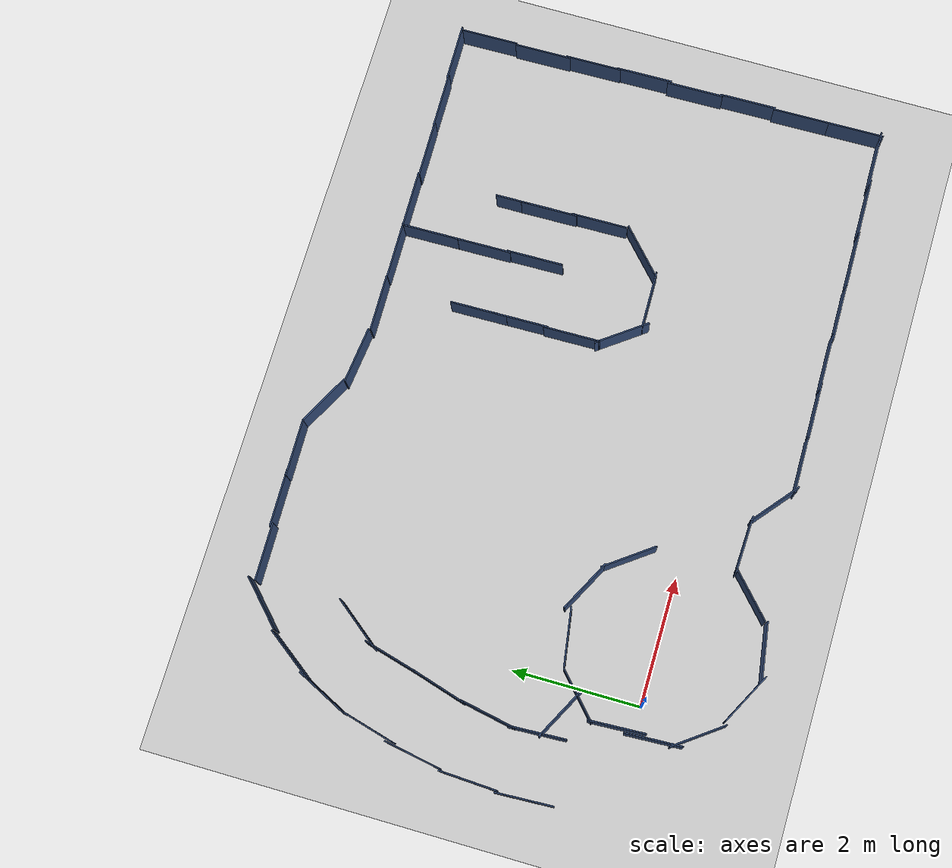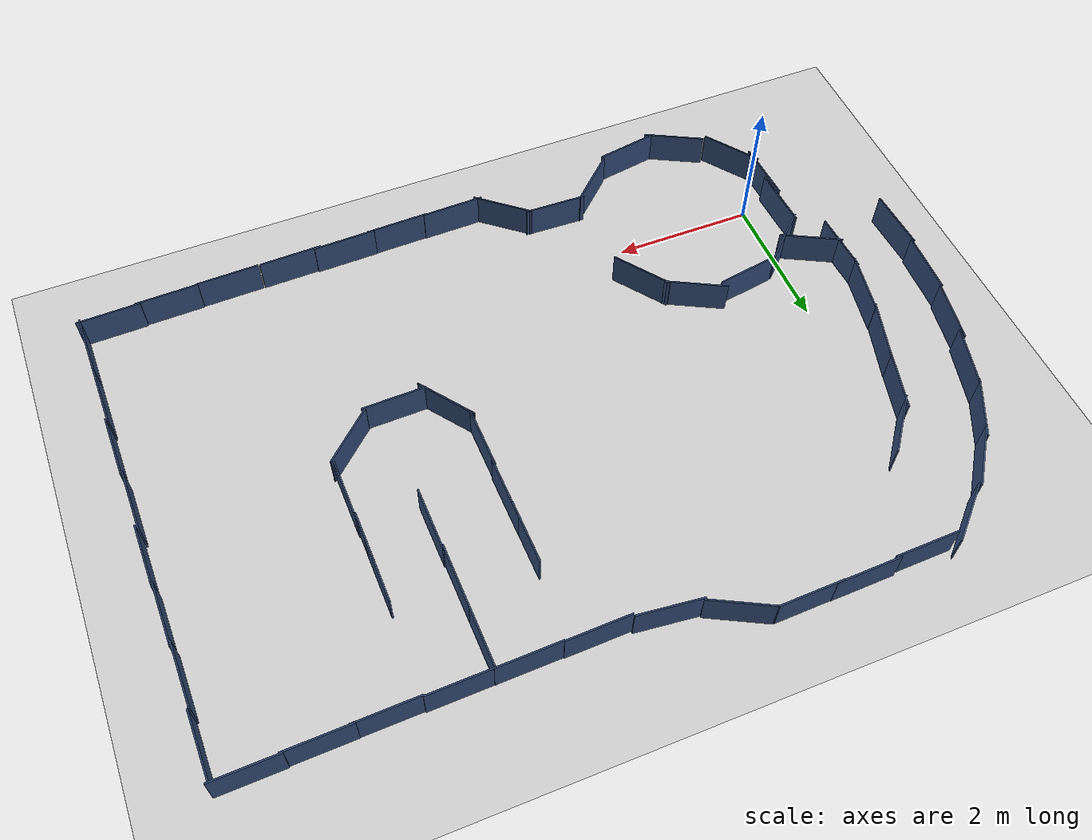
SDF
<sdf version="1.6">
 <world name="default">
  <light name="sun" type="directional">
   <pose>0 0 10 0 -0 0</pose>
   <diffuse>0.8 0.8 0.8 1</diffuse>
   <specular>0.2 0.2 0.2 1</specular>
   <attenuation>
    <range>1000</range>
    <constant>0.9</constant>
    <linear>0.01</linear>
    <quadratic>0.001</quadratic>
   </attenuation>
   <direction>-0.5 0.1 -0.9</direction>
  </light>
  <model name="ground_plane">
   <static>1</static>
   <link name="link">
    <collision name="collision">
     <geometry><plane><normal>0 0 1</normal><size>100 100</size></plane></geometry>
     <surface><friction><ode><mu>100</mu><mu2>50</mu2></ode></friction></surface>
    </collision>
    <visual name="visual">
     <cast_shadows>0</cast_shadows>
     <geometry><plane><normal>0 0 1</normal><size>100 100</size></plane></geometry>
     <material>
      <script><uri>file://media/materials/scripts/gazebo.material</uri><name>Gazebo/Grey</name></script>
     </material>
    </visual>
   </link>
  </model>
  <gravity>0 0 -9.8</gravity>
  <magnetic_field>6e-06 2.3e-05 -4.2e-05</magnetic_field>
  <atmosphere type="adiabatic"/>
  <physics name="default_physics" default="0" type="ode">
   <max_step_size>0.001</max_step_size>
   <real_time_factor>1</real_time_factor>
   <real_time_update_rate>1000</real_time_update_rate>
  </physics>
  <scene><ambient>0.4 0.4 0.4 1</ambient><background>0.7 0.7 0.7 1</background><shadows>1</shadows></scene>
  <spherical_coordinates>
   <surface_model>EARTH_WGS84</surface_model>
   <latitude_deg>0</latitude_deg>
   <longitude_deg>0</longitude_deg>
   <elevation>0</elevation>
   <heading_deg>0</heading_deg>
  </spherical_coordinates>
  <model name="wall01">
   <link name="link">
    <inertial>
     <mass>50</mass>
     <inertia><ixx>1</ixx><ixy>0</ixy><ixz>0</ixz><iyy>1</iyy><iyz>0</iyz><izz>1</izz></inertia>
    </inertial>
    <visual name="wall">
     <pose>0 0 0.45 0 -0 0</pose>
     <geometry><box><size>0.02 0.5 0.9</size></box></geometry>
     <material>
      <ambient>0.392 0.584 0.929 1</ambient>
      <diffuse>0.196 0.292 0.4645 1</diffuse>
      <specular>0 0 0 1</specular>
     </material>
    </visual>
    <collision name="collision_wall">
     <pose>0 0 0.45 0 -0 0</pose>
     <geometry><box><size>0.02 0.5 0.9</size></box></geometry>
    </collision>
    <velocity_decay><linear>0</linear><angular>0</angular></velocity_decay>
   </link>
   <static>1</static>
   <pose>-0.460276 -0.546699 0.249694 1.56697 0.002797 0.631382</pose>
  </model>
  <model name="wall01_clone">
   <link name="link">
    <inertial>
     <mass>50</mass>
     <inertia><ixx>1</ixx><ixy>0</ixy><ixz>0</ixz><iyy>1</iyy><iyz>0</iyz><izz>1</izz></inertia>
    </inertial>
    <visual name="wall">
     <pose>0 0 0.45 0 -0 0</pose>
     <geometry><box><size>0.02 0.5 0.9</size></box></geometry>
     <material>
      <ambient>0.392 0.584 0.929 1</ambient>
      <diffuse>0.196 0.292 0.4645 1</diffuse>
      <specular>0 0 0 1</specular>
     </material>
    </visual>
    <collision name="collision_wall">
     <pose>0 0 0.45 0 -0 0</pose>
     <geometry><box><size>0.02 0.5 0.9</size></box></geometry>
    </collision>
    <velocity_decay><linear>0</linear><angular>0</angular></velocity_decay>
   </link>
   <static>1</static>
   <pose>0.112634 -1.23525 0.250212 1.56861 0.004203 1.09041</pose>
  </model>
  <model name="wall01_clone_0">
   <link name="link">
    <inertial>
     <mass>50</mass>
     <inertia><ixx>1</ixx><ixy>0</ixy><ixz>0</ixz><iyy>1</iyy><iyz>0</iyz><izz>1</izz></inertia>
    </inertial>
    <visual name="wall">
     <pose>0 0 0.45 0 -0 0</pose>
     <geometry><box><size>0.02 0.5 0.9</size></box></geometry>
     <material>
      <ambient>0.392 0.584 0.929 1</ambient>
      <diffuse>0.196 0.292 0.4645 1</diffuse>
      <specular>0 0 0 1</specular>
     </material>
    </visual>
    <collision name="collision_wall">
     <pose>0 0 0.45 0 -0 0</pose>
     <geometry><box><size>0.02 0.5 0.9</size></box></geometry>
    </collision>
    <velocity_decay><linear>0</linear><angular>0</angular></velocity_decay>
   </link>
   <static>1</static>
   <pose>0.816188 -1.60558 0.249996 1.57154 0.004681 1.72852</pose>
  </model>
  <model name="wall01_clone_1">
   <link name="link">
    <inertial>
     <mass>50</mass>
     <inertia><ixx>1</ixx><ixy>0</ixy><ixz>0</ixz><iyy>1</iyy><iyz>0</iyz><izz>1</izz></inertia>
    </inertial>
    <visual name="wall">
     <pose>0 0 0.45 0 -0 0</pose>
     <geometry><box><size>0.02 0.5 0.9</size></box></geometry>
     <material>
      <ambient>0.392 0.584 0.929 1</ambient>
      <diffuse>0.196 0.292 0.4645 1</diffuse>
      <specular>0 0 0 1</specular>
     </material>
    </visual>
    <collision name="collision_wall">
     <pose>0 0 0.45 0 -0 0</pose>
     <geometry><box><size>0.02 0.5 0.9</size></box></geometry>
    </collision>
    <velocity_decay><linear>0</linear><angular>0</angular></velocity_decay>
   </link>
   <static>1</static>
   <pose>1.68389 -1.43313 0.247902 1.57403 0.003469 2.32039</pose>
  </model>
  <model name="wall01_clone_1_clone">
   <link name="link">
    <inertial>
     <mass>50</mass>
     <inertia><ixx>1</ixx><ixy>0</ixy><ixz>0</ixz><iyy>1</iyy><iyz>0</iyz><izz>1</izz></inertia>
    </inertial>
    <visual name="wall">
     <pose>0 0 0.45 0 -0 0</pose>
     <geometry><box><size>0.02 0.5 0.9</size></box></geometry>
     <material>
      <ambient>0.392 0.584 0.929 1</ambient>
      <diffuse>0.196 0.292 0.4645 1</diffuse>
      <specular>0 0 0 1</specular>
     </material>
    </visual>
    <collision name="collision_wall">
     <pose>0 0 0.45 0 -0 0</pose>
     <geometry><box><size>0.02 0.5 0.9</size></box></geometry>
    </collision>
    <velocity_decay><linear>0</linear><angular>0</angular></velocity_decay>
   </link>
   <static>1</static>
   <pose>-0.4435 0.646746 0.248434 1.57403 0.003469 2.32039</pose>
  </model>
  <model name="wall01_clone_0_clone">
   <link name="link">
    <inertial>
     <mass>50</mass>
     <inertia><ixx>1</ixx><ixy>0</ixy><ixz>0</ixz><iyy>1</iyy><iyz>0</iyz><izz>1</izz></inertia>
    </inertial>
    <visual name="wall">
     <pose>0 0 0.45 0 -0 0</pose>
     <geometry><box><size>0.02 0.5 0.9</size></box></geometry>
     <material>
      <ambient>0.392 0.584 0.929 1</ambient>
      <diffuse>0.196 0.292 0.4645 1</diffuse>
      <specular>0 0 0 1</specular>
     </material>
    </visual>
    <collision name="collision_wall">
     <pose>0 0 0.45 0 -0 0</pose>
     <geometry><box><size>0.02 0.5 0.9</size></box></geometry>
    </collision>
    <velocity_decay><linear>0</linear><angular>0</angular></velocity_decay>
   </link>
   <static>1</static>
   <pose>0.234089 1.25872 0.250194 1.57154 0.004681 1.72852</pose>
  </model>
  <model name="wall01_clone_clone">
   <link name="link">
    <inertial>
     <mass>50</mass>
     <inertia><ixx>1</ixx><ixy>0</ixy><ixz>0</ixz><iyy>1</iyy><iyz>0</iyz><izz>1</izz></inertia>
    </inertial>
    <visual name="wall">
     <pose>0 0 0.45 0 -0 0</pose>
     <geometry><box><size>0.02 0.5 0.9</size></box></geometry>
     <material>
      <ambient>0.392 0.584 0.929 1</ambient>
      <diffuse>0.196 0.292 0.4645 1</diffuse>
      <specular>0 0 0 1</specular>
     </material>
    </visual>
    <collision name="collision_wall">
     <pose>0 0 0.45 0 -0 0</pose>
     <geometry><box><size>0.02 0.5 0.9</size></box></geometry>
    </collision>
    <velocity_decay><linear>0</linear><angular>0</angular></velocity_decay>
   </link>
   <static>1</static>
   <pose>1.06818 1.49731 0.249686 1.56861 0.004203 1.09041</pose>
  </model>
  <model name="wall01_clone_2">
   <link name="link">
    <inertial>
     <mass>50</mass>
     <inertia><ixx>1</ixx><ixy>0</ixy><ixz>0</ixz><iyy>1</iyy><iyz>0</iyz><izz>1</izz></inertia>
    </inertial>
    <visual name="wall">
     <pose>0 0 0.45 0 -0 0</pose>
     <geometry><box><size>0.02 0.5 0.9</size></box></geometry>
     <material>
      <ambient>0.392 0.584 0.929 1</ambient>
      <diffuse>0.196 0.292 0.4645 1</diffuse>
      <specular>0 0 0 1</specular>
     </material>
    </visual>
    <collision name="collision_wall">
     <pose>0 0 0.45 0 -0 0</pose>
     <geometry><box><size>0.02 0.5 0.9</size></box></geometry>
    </collision>
    <velocity_decay><linear>0</linear><angular>0</angular></velocity_decay>
   </link>
   <static>1</static>
   <pose>1.8031 1.13896 0.249124 1.56697 0.002797 0.631382</pose>
  </model>
  <model name="wall01_clone_0_clone_clone">
   <link name="link">
    <inertial>
     <mass>50</mass>
     <inertia><ixx>1</ixx><ixy>0</ixy><ixz>0</ixz><iyy>1</iyy><iyz>0</iyz><izz>1</izz></inertia>
    </inertial>
    <visual name="wall">
     <pose>0 0 0.45 0 -0 0</pose>
     <geometry><box><size>0.02 0.5 0.9</size></box></geometry>
     <material>
      <ambient>0.392 0.584 0.929 1</ambient>
      <diffuse>0.196 0.292 0.4645 1</diffuse>
      <specular>0 0 0 1</specular>
     </material>
    </visual>
    <collision name="collision_wall">
     <pose>0 0 0.45 0 -0 0</pose>
     <geometry><box><size>0.02 0.5 0.9</size></box></geometry>
    </collision>
    <velocity_decay><linear>0</linear><angular>0</angular></velocity_decay>
   </link>
   <static>1</static>
   <pose>2.27453 -0.828198 0.249905 1.57064 0.004737 1.5375</pose>
  </model>
  <model name="wall01_clone_0_clone_clone_0">
   <link name="link">
    <inertial>
     <mass>50</mass>
     <inertia><ixx>1</ixx><ixy>0</ixy><ixz>0</ixz><iyy>1</iyy><iyz>0</iyz><izz>1</izz></inertia>
    </inertial>
    <visual name="wall">
     <pose>0 0 0.45 0 -0 0</pose>
     <geometry><box><size>0.02 0.5 0.9</size></box></geometry>
     <material>
      <ambient>0.392 0.584 0.929 1</ambient>
      <diffuse>0.196 0.292 0.4645 1</diffuse>
      <specular>0 0 0 1</specular>
     </material>
    </visual>
    <collision name="collision_wall">
     <pose>0 0 0.45 0 -0 0</pose>
     <geometry><box><size>0.02 0.5 0.9</size></box></geometry>
    </collision>
    <velocity_decay><linear>0</linear><angular>0</angular></velocity_decay>
   </link>
   <static>1</static>
   <pose>3.09993 -0.8363 0.253138 1.56777 0.00365 0.879278</pose>
  </model>
  <model name="wall01_clone_0_clone_clone_0_clone">
   <link name="link">
    <inertial>
     <mass>50</mass>
     <inertia><ixx>1</ixx><ixy>0</ixy><ixz>0</ixz><iyy>1</iyy><iyz>0</iyz><izz>1</izz></inertia>
    </inertial>
    <visual name="wall">
     <pose>0 0 0.45 0 -0 0</pose>
     <geometry><box><size>0.02 0.5 0.9</size></box></geometry>
     <material>
      <ambient>0.392 0.584 0.929 1</ambient>
      <diffuse>0.196 0.292 0.4645 1</diffuse>
      <specular>0 0 0 1</specular>
     </material>
    </visual>
    <collision name="collision_wall">
     <pose>0 0 0.45 0 -0 0</pose>
     <geometry><box><size>0.02 0.5 0.9</size></box></geometry>
    </collision>
    <velocity_decay><linear>0</linear><angular>0</angular></velocity_decay>
   </link>
   <static>1</static>
   <pose>3.69154 -1.37052 0.253138 1.57088 0.004741 1.58941</pose>
  </model>
  <model name="wall01_clone_0_clone_clone_0_clone_clone">
   <link name="link">
    <inertial>
     <mass>50</mass>
     <inertia><ixx>1</ixx><ixy>0</ixy><ixz>0</ixz><iyy>1</iyy><iyz>0</iyz><izz>1</izz></inertia>
    </inertial>
    <visual name="wall">
     <pose>0 0 0.45 0 -0 0</pose>
     <geometry><box><size>0.02 0.5 0.9</size></box></geometry>
     <material>
      <ambient>0.392 0.584 0.929 1</ambient>
      <diffuse>0.196 0.292 0.4645 1</diffuse>
      <specular>0 0 0 1</specular>
     </material>
    </visual>
    <collision name="collision_wall">
     <pose>0 0 0.45 0 -0 0</pose>
     <geometry><box><size>0.02 0.5 0.9</size></box></geometry>
    </collision>
    <velocity_decay><linear>0</linear><angular>0</angular></velocity_decay>
   </link>
   <static>1</static>
   <pose>4.56639 -1.36336 0.253138 1.57088 0.004741 1.58941</pose>
  </model>
  <model name="wall01_clone_0_clone_clone_0_clone_clone_0">
   <link name="link">
    <inertial>
     <mass>50</mass>
     <inertia><ixx>1</ixx><ixy>0</ixy><ixz>0</ixz><iyy>1</iyy><iyz>0</iyz><izz>1</izz></inertia>
    </inertial>
    <visual name="wall">
     <pose>0 0 0.45 0 -0 0</pose>
     <geometry><box><size>0.02 0.5 0.9</size></box></geometry>
     <material>
      <ambient>0.392 0.584 0.929 1</ambient>
      <diffuse>0.196 0.292 0.4645 1</diffuse>
      <specular>0 0 0 1</specular>
     </material>
    </visual>
    <collision name="collision_wall">
     <pose>0 0 0.45 0 -0 0</pose>
     <geometry><box><size>0.02 0.5 0.9</size></box></geometry>
    </collision>
    <velocity_decay><linear>0</linear><angular>0</angular></velocity_decay>
   </link>
   <static>1</static>
   <pose>5.35518 -1.34184 0.253138 1.57088 0.004741 1.58941</pose>
  </model>
  <model name="wall01_clone_0_clone_clone_0_clone_clone_1">
   <link name="link">
    <inertial>
     <mass>50</mass>
     <inertia><ixx>1</ixx><ixy>0</ixy><ixz>0</ixz><iyy>1</iyy><iyz>0</iyz><izz>1</izz></inertia>
    </inertial>
    <visual name="wall">
     <pose>0 0 0.45 0 -0 0</pose>
     <geometry><box><size>0.02 0.5 0.9</size></box></geometry>
     <material>
      <ambient>0.392 0.584 0.929 1</ambient>
      <diffuse>0.196 0.292 0.4645 1</diffuse>
      <specular>0 0 0 1</specular>
     </material>
    </visual>
    <collision name="collision_wall">
     <pose>0 0 0.45 0 -0 0</pose>
     <geometry><box><size>0.02 0.5 0.9</size></box></geometry>
    </collision>
    <velocity_decay><linear>0</linear><angular>0</angular></velocity_decay>
   </link>
   <static>1</static>
   <pose>6.16005 -1.34601 0.253138 1.57088 0.004741 1.58941</pose>
  </model>
  <model name="wall01_clone_0_clone_clone_0_clone_clone_2">
   <link name="link">
    <inertial>
     <mass>50</mass>
     <inertia><ixx>1</ixx><ixy>0</ixy><ixz>0</ixz><iyy>1</iyy><iyz>0</iyz><izz>1</izz></inertia>
    </inertial>
    <visual name="wall">
     <pose>0 0 0.45 0 -0 0</pose>
     <geometry><box><size>0.02 0.5 0.9</size></box></geometry>
     <material>
      <ambient>0.392 0.584 0.929 1</ambient>
      <diffuse>0.196 0.292 0.4645 1</diffuse>
      <specular>0 0 0 1</specular>
     </material>
    </visual>
    <collision name="collision_wall">
     <pose>0 0 0.45 0 -0 0</pose>
     <geometry><box><size>0.02 0.5 0.9</size></box></geometry>
    </collision>
    <velocity_decay><linear>0</linear><angular>0</angular></velocity_decay>
   </link>
   <static>1</static>
   <pose>7.07598 -1.3338 0.253138 1.57088 0.004741 1.58941</pose>
  </model>
  <model name="wall01_clone_0_clone_clone_0_clone_clone_3">
   <link name="link">
    <inertial>
     <mass>50</mass>
     <inertia><ixx>1</ixx><ixy>0</ixy><ixz>0</ixz><iyy>1</iyy><iyz>0</iyz><izz>1</izz></inertia>
    </inertial>
    <visual name="wall">
     <pose>0 0 0.45 0 -0 0</pose>
     <geometry><box><size>0.02 0.5 0.9</size></box></geometry>
     <material>
      <ambient>0.392 0.584 0.929 1</ambient>
      <diffuse>0.196 0.292 0.4645 1</diffuse>
      <specular>0 0 0 1</specular>
     </material>
    </visual>
    <collision name="collision_wall">
     <pose>0 0 0.45 0 -0 0</pose>
     <geometry><box><size>0.02 0.5 0.9</size></box></geometry>
    </collision>
    <velocity_decay><linear>0</linear><angular>0</angular></velocity_decay>
   </link>
   <static>1</static>
   <pose>7.95709 -1.3069 0.253138 1.57088 0.004741 1.58941</pose>
  </model>
  <model name="wall01_clone_0_clone_clone_0_clone_clone_4">
   <link name="link">
    <inertial>
     <mass>50</mass>
     <inertia><ixx>1</ixx><ixy>0</ixy><ixz>0</ixz><iyy>1</iyy><iyz>0</iyz><izz>1</izz></inertia>
    </inertial>
    <visual name="wall">
     <pose>0 0 0.45 0 -0 0</pose>
     <geometry><box><size>0.02 0.5 0.9</size></box></geometry>
     <material>
      <ambient>0.392 0.584 0.929 1</ambient>
      <diffuse>0.196 0.292 0.4645 1</diffuse>
      <specular>0 0 0 1</specular>
     </material>
    </visual>
    <collision name="collision_wall">
     <pose>0 0 0.45 0 -0 0</pose>
     <geometry><box><size>0.02 0.5 0.9</size></box></geometry>
    </collision>
    <velocity_decay><linear>0</linear><angular>0</angular></velocity_decay>
   </link>
   <static>1</static>
   <pose>8.7776 -1.2756 0.253138 1.57088 0.004741 1.58941</pose>
  </model>
  <model name="wall01_clone_0_clone_clone_0_clone_clone_5">
   <link name="link">
    <inertial>
     <mass>50</mass>
     <inertia><ixx>1</ixx><ixy>0</ixy><ixz>0</ixz><iyy>1</iyy><iyz>0</iyz><izz>1</izz></inertia>
    </inertial>
    <visual name="wall">
     <pose>0 0 0.45 0 -0 0</pose>
     <geometry><box><size>0.02 0.5 0.9</size></box></geometry>
     <material>
      <ambient>0.392 0.584 0.929 1</ambient>
      <diffuse>0.196 0.292 0.4645 1</diffuse>
      <specular>0 0 0 1</specular>
     </material>
    </visual>
    <collision name="collision_wall">
     <pose>0 0 0.45 0 -0 0</pose>
     <geometry><box><size>0.02 0.5 0.9</size></box></geometry>
    </collision>
    <velocity_decay><linear>0</linear><angular>0</angular></velocity_decay>
   </link>
   <static>1</static>
   <pose>9.6196 -1.30144 0.253138 1.57554 -6.2e-05 -3.12763</pose>
  </model>
  <model name="wall01_clone_0_clone_clone_0_clone_clone_5_clone">
   <link name="link">
    <inertial>
     <mass>50</mass>
     <inertia><ixx>1</ixx><ixy>0</ixy><ixz>0</ixz><iyy>1</iyy><iyz>0</iyz><izz>1</izz></inertia>
    </inertial>
    <visual name="wall">
     <pose>0 0 0.45 0 -0 0</pose>
     <geometry><box><size>0.02 0.5 0.9</size></box></geometry>
     <material>
      <ambient>0.392 0.584 0.929 1</ambient>
      <diffuse>0.196 0.292 0.4645 1</diffuse>
      <specular>0 0 0 1</specular>
     </material>
    </visual>
    <collision name="collision_wall">
     <pose>0 0 0.45 0 -0 0</pose>
     <geometry><box><size>0.02 0.5 0.9</size></box></geometry>
    </collision>
    <velocity_decay><linear>0</linear><angular>0</angular></velocity_decay>
   </link>
   <static>1</static>
   <pose>9.6068 -0.414974 0.253138 1.57554 -6.2e-05 -3.12763</pose>
  </model>
  <model name="wall01_clone_0_clone_clone_0_clone_clone_5_clone_0">
   <link name="link">
    <inertial>
     <mass>50</mass>
     <inertia><ixx>1</ixx><ixy>0</ixy><ixz>0</ixz><iyy>1</iyy><iyz>0</iyz><izz>1</izz></inertia>
    </inertial>
    <visual name="wall">
     <pose>0 0 0.45 0 -0 0</pose>
     <geometry><box><size>0.02 0.5 0.9</size></box></geometry>
     <material>
      <ambient>0.392 0.584 0.929 1</ambient>
      <diffuse>0.196 0.292 0.4645 1</diffuse>
      <specular>0 0 0 1</specular>
     </material>
    </visual>
    <collision name="collision_wall">
     <pose>0 0 0.45 0 -0 0</pose>
     <geometry><box><size>0.02 0.5 0.9</size></box></geometry>
    </collision>
    <velocity_decay><linear>0</linear><angular>0</angular></velocity_decay>
   </link>
   <static>1</static>
   <pose>9.61627 0.457382 0.253138 1.57554 -6.2e-05 -3.12763</pose>
  </model>
  <model name="wall01_clone_0_clone_clone_0_clone_clone_5_clone_1">
   <link name="link">
    <inertial>
     <mass>50</mass>
     <inertia><ixx>1</ixx><ixy>0</ixy><ixz>0</ixz><iyy>1</iyy><iyz>0</iyz><izz>1</izz></inertia>
    </inertial>
    <visual name="wall">
     <pose>0 0 0.45 0 -0 0</pose>
     <geometry><box><size>0.02 0.5 0.9</size></box></geometry>
     <material>
      <ambient>0.392 0.584 0.929 1</ambient>
      <diffuse>0.196 0.292 0.4645 1</diffuse>
      <specular>0 0 0 1</specular>
     </material>
    </visual>
    <collision name="collision_wall">
     <pose>0 0 0.45 0 -0 0</pose>
     <geometry><box><size>0.02 0.5 0.9</size></box></geometry>
    </collision>
    <velocity_decay><linear>0</linear><angular>0</angular></velocity_decay>
   </link>
   <static>1</static>
   <pose>9.58119 1.32058 0.253138 1.57554 -6.2e-05 -3.12763</pose>
  </model>
  <model name="wall01_clone_0_clone_clone_0_clone_clone_5_clone_2">
   <link name="link">
    <inertial>
     <mass>50</mass>
     <inertia><ixx>1</ixx><ixy>0</ixy><ixz>0</ixz><iyy>1</iyy><iyz>0</iyz><izz>1</izz></inertia>
    </inertial>
    <visual name="wall">
     <pose>0 0 0.45 0 -0 0</pose>
     <geometry><box><size>0.02 0.5 0.9</size></box></geometry>
     <material>
      <ambient>0.392 0.584 0.929 1</ambient>
      <diffuse>0.196 0.292 0.4645 1</diffuse>
      <specular>0 0 0 1</specular>
     </material>
    </visual>
    <collision name="collision_wall">
     <pose>0 0 0.45 0 -0 0</pose>
     <geometry><box><size>0.02 0.5 0.9</size></box></geometry>
    </collision>
    <velocity_decay><linear>0</linear><angular>0</angular></velocity_decay>
   </link>
   <static>1</static>
   <pose>9.59943 2.15704 0.253138 1.57554 -6.2e-05 -3.12763</pose>
  </model>
  <model name="wall01_clone_0_clone_clone_0_clone_clone_5_clone_3">
   <link name="link">
    <inertial>
     <mass>50</mass>
     <inertia><ixx>1</ixx><ixy>0</ixy><ixz>0</ixz><iyy>1</iyy><iyz>0</iyz><izz>1</izz></inertia>
    </inertial>
    <visual name="wall">
     <pose>0 0 0.45 0 -0 0</pose>
     <geometry><box><size>0.02 0.5 0.9</size></box></geometry>
     <material>
      <ambient>0.392 0.584 0.929 1</ambient>
      <diffuse>0.196 0.292 0.4645 1</diffuse>
      <specular>0 0 0 1</specular>
     </material>
    </visual>
    <collision name="collision_wall">
     <pose>0 0 0.45 0 -0 0</pose>
     <geometry><box><size>0.02 0.5 0.9</size></box></geometry>
    </collision>
    <velocity_decay><linear>0</linear><angular>0</angular></velocity_decay>
   </link>
   <static>1</static>
   <pose>9.57249 2.99869 0.253138 1.57554 -6.2e-05 -3.12763</pose>
  </model>
  <model name="wall01_clone_0_clone_clone_0_clone_clone_5_clone_4">
   <link name="link">
    <inertial>
     <mass>50</mass>
     <inertia><ixx>1</ixx><ixy>0</ixy><ixz>0</ixz><iyy>1</iyy><iyz>0</iyz><izz>1</izz></inertia>
    </inertial>
    <visual name="wall">
     <pose>0 0 0.45 0 -0 0</pose>
     <geometry><box><size>0.02 0.5 0.9</size></box></geometry>
     <material>
      <ambient>0.392 0.584 0.929 1</ambient>
      <diffuse>0.196 0.292 0.4645 1</diffuse>
      <specular>0 0 0 1</specular>
     </material>
    </visual>
    <collision name="collision_wall">
     <pose>0 0 0.45 0 -0 0</pose>
     <geometry><box><size>0.02 0.5 0.9</size></box></geometry>
    </collision>
    <velocity_decay><linear>0</linear><angular>0</angular></velocity_decay>
   </link>
   <static>1</static>
   <pose>9.544 3.82961 0.253138 1.57554 -6.2e-05 -3.12763</pose>
  </model>
  <model name="wall01_clone_0_clone_clone_0_clone_clone_5_clone_5">
   <link name="link">
    <inertial>
     <mass>50</mass>
     <inertia><ixx>1</ixx><ixy>0</ixy><ixz>0</ixz><iyy>1</iyy><iyz>0</iyz><izz>1</izz></inertia>
    </inertial>
    <visual name="wall">
     <pose>0 0 0.45 0 -0 0</pose>
     <geometry><box><size>0.02 0.5 0.9</size></box></geometry>
     <material>
      <ambient>0.392 0.584 0.929 1</ambient>
      <diffuse>0.196 0.292 0.4645 1</diffuse>
      <specular>0 0 0 1</specular>
     </material>
    </visual>
    <collision name="collision_wall">
     <pose>0 0 0.45 0 -0 0</pose>
     <geometry><box><size>0.02 0.5 0.9</size></box></geometry>
    </collision>
    <velocity_decay><linear>0</linear><angular>0</angular></velocity_decay>
   </link>
   <static>1</static>
   <pose>9.55293 4.71751 0.253138 1.57554 -6.2e-05 -3.12763</pose>
  </model>
  <model name="wall01_clone_0_clone_clone_0_clone_clone_4_clone">
   <link name="link">
    <inertial>
     <mass>50</mass>
     <inertia><ixx>1</ixx><ixy>0</ixy><ixz>0</ixz><iyy>1</iyy><iyz>0</iyz><izz>1</izz></inertia>
    </inertial>
    <visual name="wall">
     <pose>0 0 0.45 0 -0 0</pose>
     <geometry><box><size>0.02 0.5 0.9</size></box></geometry>
     <material>
      <ambient>0.392 0.584 0.929 1</ambient>
      <diffuse>0.196 0.292 0.4645 1</diffuse>
      <specular>0 0 0 1</specular>
     </material>
    </visual>
    <collision name="collision_wall">
     <pose>0 0 0.45 0 -0 0</pose>
     <geometry><box><size>0.02 0.5 0.9</size></box></geometry>
    </collision>
    <velocity_decay><linear>0</linear><angular>0</angular></velocity_decay>
   </link>
   <static>1</static>
   <pose>8.68255 5.61981 0.253138 1.57088 0.004741 1.58941</pose>
  </model>
  <model name="wall01_clone_0_clone_clone_0_clone_clone_4_clone_0">
   <link name="link">
    <inertial>
     <mass>50</mass>
     <inertia><ixx>1</ixx><ixy>0</ixy><ixz>0</ixz><iyy>1</iyy><iyz>0</iyz><izz>1</izz></inertia>
    </inertial>
    <visual name="wall">
     <pose>0 0 0.45 0 -0 0</pose>
     <geometry><box><size>0.02 0.5 0.9</size></box></geometry>
     <material>
      <ambient>0.392 0.584 0.929 1</ambient>
      <diffuse>0.196 0.292 0.4645 1</diffuse>
      <specular>0 0 0 1</specular>
     </material>
    </visual>
    <collision name="collision_wall">
     <pose>0 0 0.45 0 -0 0</pose>
     <geometry><box><size>0.02 0.5 0.9</size></box></geometry>
    </collision>
    <velocity_decay><linear>0</linear><angular>0</angular></velocity_decay>
   </link>
   <static>1</static>
   <pose>7.82978 5.5907 0.253138 1.57088 0.004741 1.58941</pose>
  </model>
  <model name="wall01_clone_0_clone_clone_0_clone_clone_4_clone_1">
   <link name="link">
    <inertial>
     <mass>50</mass>
     <inertia><ixx>1</ixx><ixy>0</ixy><ixz>0</ixz><iyy>1</iyy><iyz>0</iyz><izz>1</izz></inertia>
    </inertial>
    <visual name="wall">
     <pose>0 0 0.45 0 -0 0</pose>
     <geometry><box><size>0.02 0.5 0.9</size></box></geometry>
     <material>
      <ambient>0.392 0.584 0.929 1</ambient>
      <diffuse>0.196 0.292 0.4645 1</diffuse>
      <specular>0 0 0 1</specular>
     </material>
    </visual>
    <collision name="collision_wall">
     <pose>0 0 0.45 0 -0 0</pose>
     <geometry><box><size>0.02 0.5 0.9</size></box></geometry>
    </collision>
    <velocity_decay><linear>0</linear><angular>0</angular></velocity_decay>
   </link>
   <static>1</static>
   <pose>7.00129 5.57001 0.253138 1.57088 0.004741 1.58941</pose>
  </model>
  <model name="wall01_clone_0_clone_clone_0_clone_clone_4_clone_2">
   <link name="link">
    <inertial>
     <mass>50</mass>
     <inertia><ixx>1</ixx><ixy>0</ixy><ixz>0</ixz><iyy>1</iyy><iyz>0</iyz><izz>1</izz></inertia>
    </inertial>
    <visual name="wall">
     <pose>0 0 0.45 0 -0 0</pose>
     <geometry><box><size>0.02 0.5 0.9</size></box></geometry>
     <material>
      <ambient>0.392 0.584 0.929 1</ambient>
      <diffuse>0.196 0.292 0.4645 1</diffuse>
      <specular>0 0 0 1</specular>
     </material>
    </visual>
    <collision name="collision_wall">
     <pose>0 0 0.45 0 -0 0</pose>
     <geometry><box><size>0.02 0.5 0.9</size></box></geometry>
    </collision>
    <velocity_decay><linear>0</linear><angular>0</angular></velocity_decay>
   </link>
   <static>1</static>
   <pose>6.12448 5.56774 0.253138 1.57088 0.004741 1.58941</pose>
  </model>
  <model name="wall01_clone_0_clone_clone_0_clone_clone_5_clone_4_clone">
   <link name="link">
    <inertial>
     <mass>50</mass>
     <inertia><ixx>1</ixx><ixy>0</ixy><ixz>0</ixz><iyy>1</iyy><iyz>0</iyz><izz>1</izz></inertia>
    </inertial>
    <visual name="wall">
     <pose>0 0 0.45 0 -0 0</pose>
     <geometry><box><size>0.02 0.5 0.9</size></box></geometry>
     <material>
      <ambient>0.392 0.584 0.929 1</ambient>
      <diffuse>0.196 0.292 0.4645 1</diffuse>
      <specular>0 0 0 1</specular>
     </material>
    </visual>
    <collision name="collision_wall">
     <pose>0 0 0.45 0 -0 0</pose>
     <geometry><box><size>0.02 0.5 0.9</size></box></geometry>
    </collision>
    <velocity_decay><linear>0</linear><angular>0</angular></velocity_decay>
   </link>
   <static>1</static>
   <pose>6.14578 4.68033 0.253138 1.57554 -6.2e-05 -3.12763</pose>
  </model>
  <model name="wall01_clone_0_clone_clone_0_clone_clone_5_clone_4_clone_0">
   <link name="link">
    <inertial>
     <mass>50</mass>
     <inertia><ixx>1</ixx><ixy>0</ixy><ixz>0</ixz><iyy>1</iyy><iyz>0</iyz><izz>1</izz></inertia>
    </inertial>
    <visual name="wall">
     <pose>0 0 0.45 0 -0 0</pose>
     <geometry><box><size>0.02 0.5 0.9</size></box></geometry>
     <material>
      <ambient>0.392 0.584 0.929 1</ambient>
      <diffuse>0.196 0.292 0.4645 1</diffuse>
      <specular>0 0 0 1</specular>
     </material>
    </visual>
    <collision name="collision_wall">
     <pose>0 0 0.45 0 -0 0</pose>
     <geometry><box><size>0.02 0.5 0.9</size></box></geometry>
    </collision>
    <velocity_decay><linear>0</linear><angular>0</angular></velocity_decay>
   </link>
   <static>1</static>
   <pose>7.01448 3.40792 0.253138 1.57554 -6.2e-05 -3.12763</pose>
  </model>
  <model name="wall01_clone_0_clone_clone_0_clone_clone_5_clone_4_clone_1">
   <link name="link">
    <inertial>
     <mass>50</mass>
     <inertia><ixx>1</ixx><ixy>0</ixy><ixz>0</ixz><iyy>1</iyy><iyz>0</iyz><izz>1</izz></inertia>
    </inertial>
    <visual name="wall">
     <pose>0 0 0.45 0 -0 0</pose>
     <geometry><box><size>0.02 0.5 0.9</size></box></geometry>
     <material>
      <ambient>0.392 0.584 0.929 1</ambient>
      <diffuse>0.196 0.292 0.4645 1</diffuse>
      <specular>0 0 0 1</specular>
     </material>
    </visual>
    <collision name="collision_wall">
     <pose>0 0 0.45 0 -0 0</pose>
     <geometry><box><size>0.02 0.5 0.9</size></box></geometry>
    </collision>
    <velocity_decay><linear>0</linear><angular>0</angular></velocity_decay>
   </link>
   <static>1</static>
   <pose>7.01853 2.99856 0.253138 1.57554 -6.2e-05 -3.12763</pose>
  </model>
  <model name="wall01_clone_0_clone_clone_0_clone_clone_5_clone_4_clone_2">
   <link name="link">
    <inertial>
     <mass>50</mass>
     <inertia><ixx>1</ixx><ixy>0</ixy><ixz>0</ixz><iyy>1</iyy><iyz>0</iyz><izz>1</izz></inertia>
    </inertial>
    <visual name="wall">
     <pose>0 0 0.45 0 -0 0</pose>
     <geometry><box><size>0.02 0.5 0.9</size></box></geometry>
     <material>
      <ambient>0.392 0.584 0.929 1</ambient>
      <diffuse>0.196 0.292 0.4645 1</diffuse>
      <specular>0 0 0 1</specular>
     </material>
    </visual>
    <collision name="collision_wall">
     <pose>0 0 0.45 0 -0 0</pose>
     <geometry><box><size>0.02 0.5 0.9</size></box></geometry>
    </collision>
    <velocity_decay><linear>0</linear><angular>0</angular></velocity_decay>
   </link>
   <static>1</static>
   <pose>7.04448 2.18624 0.253138 1.57554 -6.2e-05 -3.12763</pose>
  </model>
  <model name="wall01_clone_0_clone_clone_0_clone_clone_5_clone_4_clone_clone">
   <link name="link">
    <inertial>
     <mass>50</mass>
     <inertia><ixx>1</ixx><ixy>0</ixy><ixz>0</ixz><iyy>1</iyy><iyz>0</iyz><izz>1</izz></inertia>
    </inertial>
    <visual name="wall">
     <pose>0 0 0.45 0 -0 0</pose>
     <geometry><box><size>0.02 0.5 0.9</size></box></geometry>
     <material>
      <ambient>0.392 0.584 0.929 1</ambient>
      <diffuse>0.196 0.292 0.4645 1</diffuse>
      <specular>0 0 0 1</specular>
     </material>
    </visual>
    <collision name="collision_wall">
     <pose>0 0 0.45 0 -0 0</pose>
     <geometry><box><size>0.02 0.5 0.9</size></box></geometry>
    </collision>
    <velocity_decay><linear>0</linear><angular>0</angular></velocity_decay>
   </link>
   <static>1</static>
   <pose>6.15816 3.83174 0.253138 1.57554 -6.2e-05 -3.12763</pose>
  </model>
  <model name="wall01_clone_0_clone_clone_0_clone_clone_5_clone_4_clone_clone_0">
   <link name="link">
    <inertial>
     <mass>50</mass>
     <inertia><ixx>1</ixx><ixy>0</ixy><ixz>0</ixz><iyy>1</iyy><iyz>0</iyz><izz>1</izz></inertia>
    </inertial>
    <visual name="wall">
     <pose>0 0 0.45 0 -0 0</pose>
     <geometry><box><size>0.02 0.5 0.9</size></box></geometry>
     <material>
      <ambient>0.392 0.584 0.929 1</ambient>
      <diffuse>0.196 0.292 0.4645 1</diffuse>
      <specular>0 0 0 1</specular>
     </material>
    </visual>
    <collision name="collision_wall">
     <pose>0 0 0.45 0 -0 0</pose>
     <geometry><box><size>0.02 0.5 0.9</size></box></geometry>
    </collision>
    <velocity_decay><linear>0</linear><angular>0</angular></velocity_decay>
   </link>
   <static>1</static>
   <pose>6.18518 2.98629 0.253138 1.57554 -6.2e-05 -3.12763</pose>
  </model>
  <model name="wall01_clone_0_clone_clone_0_clone_clone_5_clone_4_clone_2_clone">
   <link name="link">
    <inertial>
     <mass>50</mass>
     <inertia><ixx>1</ixx><ixy>0</ixy><ixz>0</ixz><iyy>1</iyy><iyz>0</iyz><izz>1</izz></inertia>
    </inertial>
    <visual name="wall">
     <pose>0 0 0.45 0 -0 0</pose>
     <geometry><box><size>0.02 0.5 0.9</size></box></geometry>
     <material>
      <ambient>0.392 0.584 0.929 1</ambient>
      <diffuse>0.196 0.292 0.4645 1</diffuse>
      <specular>0 0 0 1</specular>
     </material>
    </visual>
    <collision name="collision_wall">
     <pose>0 0 0.45 0 -0 0</pose>
     <geometry><box><size>0.02 0.5 0.9</size></box></geometry>
    </collision>
    <velocity_decay><linear>0</linear><angular>0</angular></velocity_decay>
   </link>
   <static>1</static>
   <pose>5.1501 3.5938 0.253393 1.57554 -6.2e-05 -3.12763</pose>
  </model>
  <model name="wall01_clone_0_clone_clone_0_clone_clone_5_clone_4_clone_2_clone_0">
   <link name="link">
    <inertial>
     <mass>50</mass>
     <inertia><ixx>1</ixx><ixy>0</ixy><ixz>0</ixz><iyy>1</iyy><iyz>0</iyz><izz>1</izz></inertia>
    </inertial>
    <visual name="wall">
     <pose>0 0 0.45 0 -0 0</pose>
     <geometry><box><size>0.02 0.5 0.9</size></box></geometry>
     <material>
      <ambient>0.392 0.584 0.929 1</ambient>
      <diffuse>0.196 0.292 0.4645 1</diffuse>
      <specular>0 0 0 1</specular>
     </material>
    </visual>
    <collision name="collision_wall">
     <pose>0 0 0.45 0 -0 0</pose>
     <geometry><box><size>0.02 0.5 0.9</size></box></geometry>
    </collision>
    <velocity_decay><linear>0</linear><angular>0</angular></velocity_decay>
   </link>
   <static>1</static>
   <pose>5.16147 2.92477 0.253138 1.57554 -6.2e-05 -3.12763</pose>
  </model>
  <model name="wall01_clone_0_clone_clone_0_clone_clone_5_clone_4_clone_2_clone_1">
   <link name="link">
    <inertial>
     <mass>50</mass>
     <inertia><ixx>1</ixx><ixy>0</ixy><ixz>0</ixz><iyy>1</iyy><iyz>0</iyz><izz>1</izz></inertia>
    </inertial>
    <visual name="wall">
     <pose>0 0 0.45 0 -0 0</pose>
     <geometry><box><size>0.02 0.5 0.9</size></box></geometry>
     <material>
      <ambient>0.392 0.584 0.929 1</ambient>
      <diffuse>0.196 0.292 0.4645 1</diffuse>
      <specular>0 0 0 1</specular>
     </material>
    </visual>
    <collision name="collision_wall">
     <pose>0 0 0.45 0 -0 0</pose>
     <geometry><box><size>0.02 0.5 0.9</size></box></geometry>
    </collision>
    <velocity_decay><linear>0</linear><angular>0</angular></velocity_decay>
   </link>
   <static>1</static>
   <pose>5.15921 2.09996 0.253138 1.57554 -6.2e-05 -3.12763</pose>
  </model>
  <model name="wall01_clone_2_clone">
   <link name="link">
    <inertial>
     <mass>50</mass>
     <inertia><ixx>1</ixx><ixy>0</ixy><ixz>0</ixz><iyy>1</iyy><iyz>0</iyz><izz>1</izz></inertia>
    </inertial>
    <visual name="wall">
     <pose>0 0 0.45 0 -0 0</pose>
     <geometry><box><size>0.02 0.5 0.9</size></box></geometry>
     <material>
      <ambient>0.392 0.584 0.929 1</ambient>
      <diffuse>0.196 0.292 0.4645 1</diffuse>
      <specular>0 0 0 1</specular>
     </material>
    </visual>
    <collision name="collision_wall">
     <pose>0 0 0.45 0 -0 0</pose>
     <geometry><box><size>0.02 0.5 0.9</size></box></geometry>
    </collision>
    <velocity_decay><linear>0</linear><angular>0</angular></velocity_decay>
   </link>
   <static>1</static>
   <pose>5.12108 2.17047 0.249124 1.56697 0.002797 0.631382</pose>
  </model>
  <model name="wall01_clone_0_clone_clone_0_clone_clone_0_clone">
   <link name="link">
    <inertial>
     <mass>50</mass>
     <inertia><ixx>1</ixx><ixy>0</ixy><ixz>0</ixz><iyy>1</iyy><iyz>0</iyz><izz>1</izz></inertia>
    </inertial>
    <visual name="wall">
     <pose>0 0 0.45 0 -0 0</pose>
     <geometry><box><size>0.02 0.5 0.9</size></box></geometry>
     <material>
      <ambient>0.392 0.584 0.929 1</ambient>
      <diffuse>0.196 0.292 0.4645 1</diffuse>
      <specular>0 0 0 1</specular>
     </material>
    </visual>
    <collision name="collision_wall">
     <pose>0 0 0.45 0 -0 0</pose>
     <geometry><box><size>0.02 0.5 0.9</size></box></geometry>
    </collision>
    <velocity_decay><linear>0</linear><angular>0</angular></velocity_decay>
   </link>
   <static>1</static>
   <pose>5.57272 1.53737 0.252774 1.57088 0.004741 1.58941</pose>
  </model>
  <model name="wall01_clone_1_clone_0">
   <link name="link">
    <inertial>
     <mass>50</mass>
     <inertia><ixx>1</ixx><ixy>0</ixy><ixz>0</ixz><iyy>1</iyy><iyz>0</iyz><izz>1</izz></inertia>
    </inertial>
    <visual name="wall">
     <pose>0 0 0.45 0 -0 0</pose>
     <geometry><box><size>0.02 0.5 0.9</size></box></geometry>
     <material>
      <ambient>0.392 0.584 0.929 1</ambient>
      <diffuse>0.196 0.292 0.4645 1</diffuse>
      <specular>0 0 0 1</specular>
     </material>
    </visual>
    <collision name="collision_wall">
     <pose>0 0 0.45 0 -0 0</pose>
     <geometry><box><size>0.02 0.5 0.9</size></box></geometry>
    </collision>
    <velocity_decay><linear>0</linear><angular>0</angular></velocity_decay>
   </link>
   <static>1</static>
   <pose>6.4243 1.56664 0.247902 1.57403 0.003469 2.32039</pose>
  </model>
  <model name="wall01_clone_0_clone_clone_0_clone_clone_4_clone_2_clone">
   <link name="link">
    <inertial>
     <mass>50</mass>
     <inertia><ixx>1</ixx><ixy>0</ixy><ixz>0</ixz><iyy>1</iyy><iyz>0</iyz><izz>1</izz></inertia>
    </inertial>
    <visual name="wall">
     <pose>0 0 0.45 0 -0 0</pose>
     <geometry><box><size>0.02 0.5 0.9</size></box></geometry>
     <material>
      <ambient>0.392 0.584 0.929 1</ambient>
      <diffuse>0.196 0.292 0.4645 1</diffuse>
      <specular>0 0 0 1</specular>
     </material>
    </visual>
    <collision name="collision_wall">
     <pose>0 0 0.45 0 -0 0</pose>
     <geometry><box><size>0.02 0.5 0.9</size></box></geometry>
    </collision>
    <velocity_decay><linear>0</linear><angular>0</angular></velocity_decay>
   </link>
   <static>1</static>
   <pose>5.25663 5.55421 0.253138 1.57088 0.004741 1.58941</pose>
  </model>
  <model name="wall01_clone_0_clone_clone_0_clone_clone_4_clone_2_clone_0">
   <link name="link">
    <inertial>
     <mass>50</mass>
     <inertia><ixx>1</ixx><ixy>0</ixy><ixz>0</ixz><iyy>1</iyy><iyz>0</iyz><izz>1</izz></inertia>
    </inertial>
    <visual name="wall">
     <pose>0 0 0.45 0 -0 0</pose>
     <geometry><box><size>0.02 0.5 0.9</size></box></geometry>
     <material>
      <ambient>0.392 0.584 0.929 1</ambient>
      <diffuse>0.196 0.292 0.4645 1</diffuse>
      <specular>0 0 0 1</specular>
     </material>
    </visual>
    <collision name="collision_wall">
     <pose>0 0 0.45 0 -0 0</pose>
     <geometry><box><size>0.02 0.5 0.9</size></box></geometry>
    </collision>
    <velocity_decay><linear>0</linear><angular>0</angular></velocity_decay>
   </link>
   <static>1</static>
   <pose>4.36765 5.54696 0.253138 1.57088 0.004741 1.58941</pose>
  </model>
  <model name="wall01_clone_0_clone_clone_0_clone_clone_4_clone_2_clone_1">
   <link name="link">
    <inertial>
     <mass>50</mass>
     <inertia><ixx>1</ixx><ixy>0</ixy><ixz>0</ixz><iyy>1</iyy><iyz>0</iyz><izz>1</izz></inertia>
    </inertial>
    <visual name="wall">
     <pose>0 0 0.45 0 -0 0</pose>
     <geometry><box><size>0.02 0.5 0.9</size></box></geometry>
     <material>
      <ambient>0.392 0.584 0.929 1</ambient>
      <diffuse>0.196 0.292 0.4645 1</diffuse>
      <specular>0 0 0 1</specular>
     </material>
    </visual>
    <collision name="collision_wall">
     <pose>0 0 0.45 0 -0 0</pose>
     <geometry><box><size>0.02 0.5 0.9</size></box></geometry>
    </collision>
    <velocity_decay><linear>0</linear><angular>0</angular></velocity_decay>
   </link>
   <static>1</static>
   <pose>3.48048 5.67995 0.253138 1.57025 0.00471 1.45632</pose>
  </model>
  <model name="wall01_clone_clone_clone">
   <link name="link">
    <inertial>
     <mass>50</mass>
     <inertia><ixx>1</ixx><ixy>0</ixy><ixz>0</ixz><iyy>1</iyy><iyz>0</iyz><izz>1</izz></inertia>
    </inertial>
    <visual name="wall">
     <pose>0 0 0.45 0 -0 0</pose>
     <geometry><box><size>0.02 0.5 0.9</size></box></geometry>
     <material>
      <ambient>0.392 0.584 0.929 1</ambient>
      <diffuse>0.196 0.292 0.4645 1</diffuse>
      <specular>0 0 0 1</specular>
     </material>
    </visual>
    <collision name="collision_wall">
     <pose>0 0 0.45 0 -0 0</pose>
     <geometry><box><size>0.02 0.5 0.9</size></box></geometry>
    </collision>
    <velocity_decay><linear>0</linear><angular>0</angular></velocity_decay>
   </link>
   <static>1</static>
   <pose>2.71369 6.11007 0.249686 1.56861 0.004203 1.09041</pose>
  </model>
  <model name="wall01_clone_0_clone_clone_0_clone_clone_4_clone_2_clone_0_clone">
   <link name="link">
    <inertial>
     <mass>50</mass>
     <inertia><ixx>1</ixx><ixy>0</ixy><ixz>0</ixz><iyy>1</iyy><iyz>0</iyz><izz>1</izz></inertia>
    </inertial>
    <visual name="wall">
     <pose>0 0 0.45 0 -0 0</pose>
     <geometry><box><size>0.02 0.5 0.9</size></box></geometry>
     <material>
      <ambient>0.392 0.584 0.929 1</ambient>
      <diffuse>0.196 0.292 0.4645 1</diffuse>
      <specular>0 0 0 1</specular>
     </material>
    </visual>
    <collision name="collision_wall">
     <pose>0 0 0.45 0 -0 0</pose>
     <geometry><box><size>0.02 0.5 0.9</size></box></geometry>
    </collision>
    <velocity_decay><linear>0</linear><angular>0</angular></velocity_decay>
   </link>
   <static>1</static>
   <pose>1.83279 6.08998 0.253138 1.57088 0.004741 1.58941</pose>
  </model>
  <model name="wall01_clone_0_clone_clone_0_clone_clone_4_clone_2_clone_0_clone_0">
   <link name="link">
    <inertial>
     <mass>50</mass>
     <inertia><ixx>1</ixx><ixy>0</ixy><ixz>0</ixz><iyy>1</iyy><iyz>0</iyz><izz>1</izz></inertia>
    </inertial>
    <visual name="wall">
     <pose>0 0 0.45 0 -0 0</pose>
     <geometry><box><size>0.02 0.5 0.9</size></box></geometry>
     <material>
      <ambient>0.392 0.584 0.929 1</ambient>
      <diffuse>0.196 0.292 0.4645 1</diffuse>
      <specular>0 0 0 1</specular>
     </material>
    </visual>
    <collision name="collision_wall">
     <pose>0 0 0.45 0 -0 0</pose>
     <geometry><box><size>0.02 0.5 0.9</size></box></geometry>
    </collision>
    <velocity_decay><linear>0</linear><angular>0</angular></velocity_decay>
   </link>
   <static>1</static>
   <pose>1.02652 6.08063 0.253138 1.57088 0.004741 1.58941</pose>
  </model>
  <model name="wall01_clone_0_clone_clone_0_clone_clone_4_clone_2_clone_0_clone_1">
   <link name="link">
    <inertial>
     <mass>50</mass>
     <inertia><ixx>1</ixx><ixy>0</ixy><ixz>0</ixz><iyy>1</iyy><iyz>0</iyz><izz>1</izz></inertia>
    </inertial>
    <visual name="wall">
     <pose>0 0 0.45 0 -0 0</pose>
     <geometry><box><size>0.02 0.5 0.9</size></box></geometry>
     <material>
      <ambient>0.392 0.584 0.929 1</ambient>
      <diffuse>0.196 0.292 0.4645 1</diffuse>
      <specular>0 0 0 1</specular>
     </material>
    </visual>
    <collision name="collision_wall">
     <pose>0 0 0.45 0 -0 0</pose>
     <geometry><box><size>0.02 0.5 0.9</size></box></geometry>
    </collision>
    <velocity_decay><linear>0</linear><angular>0</angular></velocity_decay>
   </link>
   <static>1</static>
   <pose>0.188228 6.03694 0.253138 1.57088 0.004741 1.58941</pose>
  </model>
  <model name="wall01_clone_1_clone_clone">
   <link name="link">
    <inertial>
     <mass>50</mass>
     <inertia><ixx>1</ixx><ixy>0</ixy><ixz>0</ixz><iyy>1</iyy><iyz>0</iyz><izz>1</izz></inertia>
    </inertial>
    <visual name="wall">
     <pose>0 0 0.45 0 -0 0</pose>
     <geometry><box><size>0.02 0.5 0.9</size></box></geometry>
     <material>
      <ambient>0.392 0.584 0.929 1</ambient>
      <diffuse>0.196 0.292 0.4645 1</diffuse>
      <specular>0 0 0 1</specular>
     </material>
    </visual>
    <collision name="collision_wall">
     <pose>0 0 0.45 0 -0 0</pose>
     <geometry><box><size>0.02 0.5 0.9</size></box></geometry>
    </collision>
    <velocity_decay><linear>0</linear><angular>0</angular></velocity_decay>
   </link>
   <static>1</static>
   <pose>-0.426206 5.53766 0.247495 1.57407 0.003436 2.33034</pose>
  </model>
  <model name="wall01_clone_1_clone_clone_0">
   <link name="link">
    <inertial>
     <mass>50</mass>
     <inertia><ixx>1</ixx><ixy>0</ixy><ixz>0</ixz><iyy>1</iyy><iyz>0</iyz><izz>1</izz></inertia>
    </inertial>
    <visual name="wall">
     <pose>0 0 0.45 0 -0 0</pose>
     <geometry><box><size>0.02 0.5 0.9</size></box></geometry>
     <material>
      <ambient>0.392 0.584 0.929 1</ambient>
      <diffuse>0.196 0.292 0.4645 1</diffuse>
      <specular>0 0 0 1</specular>
     </material>
    </visual>
    <collision name="collision_wall">
     <pose>0 0 0.45 0 -0 0</pose>
     <geometry><box><size>0.02 0.5 0.9</size></box></geometry>
    </collision>
    <velocity_decay><linear>0</linear><angular>0</angular></velocity_decay>
   </link>
   <static>1</static>
   <pose>-0.979106 4.8441 0.248799 1.57461 0.002813 2.50606</pose>
  </model>
  <model name="wall01_clone_1_clone_clone_0_clone">
   <link name="link">
    <inertial>
     <mass>50</mass>
     <inertia><ixx>1</ixx><ixy>0</ixy><ixz>0</ixz><iyy>1</iyy><iyz>0</iyz><izz>1</izz></inertia>
    </inertial>
    <visual name="wall">
     <pose>0 0 0.45 0 -0 0</pose>
     <geometry><box><size>0.02 0.5 0.9</size></box></geometry>
     <material>
      <ambient>0.392 0.584 0.929 1</ambient>
      <diffuse>0.196 0.292 0.4645 1</diffuse>
      <specular>0 0 0 1</specular>
     </material>
    </visual>
    <collision name="collision_wall">
     <pose>0 0 0.45 0 -0 0</pose>
     <geometry><box><size>0.02 0.5 0.9</size></box></geometry>
    </collision>
    <velocity_decay><linear>0</linear><angular>0</angular></velocity_decay>
   </link>
   <static>1</static>
   <pose>-1.30971 4.17367 0.247914 1.57506 0.002079 2.68718</pose>
  </model>
  <model name="wall01_clone_1_clone_clone_0_clone_clone">
   <link name="link">
    <inertial>
     <mass>50</mass>
     <inertia><ixx>1</ixx><ixy>0</ixy><ixz>0</ixz><iyy>1</iyy><iyz>0</iyz><izz>1</izz></inertia>
    </inertial>
    <visual name="wall">
     <pose>0 0 0.45 0 -0 0</pose>
     <geometry><box><size>0.02 0.5 0.9</size></box></geometry>
     <material>
      <ambient>0.392 0.584 0.929 1</ambient>
      <diffuse>0.196 0.292 0.4645 1</diffuse>
      <specular>0 0 0 1</specular>
     </material>
    </visual>
    <collision name="collision_wall">
     <pose>0 0 0.45 0 -0 0</pose>
     <geometry><box><size>0.02 0.5 0.9</size></box></geometry>
    </collision>
    <velocity_decay><linear>0</linear><angular>0</angular></velocity_decay>
   </link>
   <static>1</static>
   <pose>-1.51804 3.36038 0.248117 1.57538 0.001231 2.87843</pose>
  </model>
  <model name="wall01_clone_1_clone_clone_0_clone_clone_0">
   <link name="link">
    <inertial>
     <mass>50</mass>
     <inertia><ixx>1</ixx><ixy>0</ixy><ixz>0</ixz><iyy>1</iyy><iyz>0</iyz><izz>1</izz></inertia>
    </inertial>
    <visual name="wall">
     <pose>0 0 0.45 0 -0 0</pose>
     <geometry><box><size>0.02 0.5 0.9</size></box></geometry>
     <material>
      <ambient>0.392 0.584 0.929 1</ambient>
      <diffuse>0.196 0.292 0.4645 1</diffuse>
      <specular>0 0 0 1</specular>
     </material>
    </visual>
    <collision name="collision_wall">
     <pose>0 0 0.45 0 -0 0</pose>
     <geometry><box><size>0.02 0.5 0.9</size></box></geometry>
    </collision>
    <velocity_decay><linear>0</linear><angular>0</angular></velocity_decay>
   </link>
   <static>1</static>
   <pose>-1.68711 2.59708 0.247876 1.57546 0.000846 2.96155</pose>
  </model>
  <model name="wall01_clone_1_clone_clone_0_clone_clone_1">
   <link name="link">
    <inertial>
     <mass>50</mass>
     <inertia><ixx>1</ixx><ixy>0</ixy><ixz>0</ixz><iyy>1</iyy><iyz>0</iyz><izz>1</izz></inertia>
    </inertial>
    <visual name="wall">
     <pose>0 0 0.45 0 -0 0</pose>
     <geometry><box><size>0.02 0.5 0.9</size></box></geometry>
     <material>
      <ambient>0.392 0.584 0.929 1</ambient>
      <diffuse>0.196 0.292 0.4645 1</diffuse>
      <specular>0 0 0 1</specular>
     </material>
    </visual>
    <collision name="collision_wall">
     <pose>0 0 0.45 0 -0 0</pose>
     <geometry><box><size>0.02 0.5 0.9</size></box></geometry>
    </collision>
    <velocity_decay><linear>0</linear><angular>0</angular></velocity_decay>
   </link>
   <static>1</static>
   <pose>-1.75905 1.70526 0.247945 1.57553 0.000235 3.09139</pose>
  </model>
  <model name="wall01_clone_1_clone_clone_0_clone_clone_2">
   <link name="link">
    <inertial>
     <mass>50</mass>
     <inertia><ixx>1</ixx><ixy>0</ixy><ixz>0</ixz><iyy>1</iyy><iyz>0</iyz><izz>1</izz></inertia>
    </inertial>
    <visual name="wall">
     <pose>0 0 0.45 0 -0 0</pose>
     <geometry><box><size>0.02 0.5 0.9</size></box></geometry>
     <material>
      <ambient>0.392 0.584 0.929 1</ambient>
      <diffuse>0.196 0.292 0.4645 1</diffuse>
      <specular>0 0 0 1</specular>
     </material>
    </visual>
    <collision name="collision_wall">
     <pose>0 0 0.45 0 -0 0</pose>
     <geometry><box><size>0.02 0.5 0.9</size></box></geometry>
    </collision>
    <velocity_decay><linear>0</linear><angular>0</angular></velocity_decay>
   </link>
   <static>1</static>
   <pose>-1.74728 0.839796 0.247913 1.57553 -0.000222 -3.09542</pose>
  </model>
  <model name="wall01_clone_1_clone_clone_0_clone_clone_2_clone">
   <link name="link">
    <inertial>
     <mass>50</mass>
     <inertia><ixx>1</ixx><ixy>0</ixy><ixz>0</ixz><iyy>1</iyy><iyz>0</iyz><izz>1</izz></inertia>
    </inertial>
    <visual name="wall">
     <pose>0 0 0.45 0 -0 0</pose>
     <geometry><box><size>0.02 0.5 0.9</size></box></geometry>
     <material>
      <ambient>0.392 0.584 0.929 1</ambient>
      <diffuse>0.196 0.292 0.4645 1</diffuse>
      <specular>0 0 0 1</specular>
     </material>
    </visual>
    <collision name="collision_wall">
     <pose>0 0 0.45 0 -0 0</pose>
     <geometry><box><size>0.02 0.5 0.9</size></box></geometry>
    </collision>
    <velocity_decay><linear>0</linear><angular>0</angular></velocity_decay>
   </link>
   <static>1</static>
   <pose>-0.778603 0.928701 0.247887 1.57553 -0.000222 -3.09542</pose>
  </model>
  <model name="wall01_clone_1_clone_clone_0_clone_clone_1_clone">
   <link name="link">
    <inertial>
     <mass>50</mass>
     <inertia><ixx>1</ixx><ixy>0</ixy><ixz>0</ixz><iyy>1</iyy><iyz>0</iyz><izz>1</izz></inertia>
    </inertial>
    <visual name="wall">
     <pose>0 0 0.45 0 -0 0</pose>
     <geometry><box><size>0.02 0.5 0.9</size></box></geometry>
     <material>
      <ambient>0.392 0.584 0.929 1</ambient>
      <diffuse>0.196 0.292 0.4645 1</diffuse>
      <specular>0 0 0 1</specular>
     </material>
    </visual>
    <collision name="collision_wall">
     <pose>0 0 0.45 0 -0 0</pose>
     <geometry><box><size>0.02 0.5 0.9</size></box></geometry>
    </collision>
    <velocity_decay><linear>0</linear><angular>0</angular></velocity_decay>
   </link>
   <static>1</static>
   <pose>-0.823899 1.71521 0.248103 1.57545 0.000905 2.94896</pose>
  </model>
  <model name="wall01_clone_1_clone_clone_0_clone_clone_0_clone">
   <link name="link">
    <inertial>
     <mass>50</mass>
     <inertia><ixx>1</ixx><ixy>0</ixy><ixz>0</ixz><iyy>1</iyy><iyz>0</iyz><izz>1</izz></inertia>
    </inertial>
    <visual name="wall">
     <pose>0 0 0.45 0 -0 0</pose>
     <geometry><box><size>0.02 0.5 0.9</size></box></geometry>
     <material>
      <ambient>0.392 0.584 0.929 1</ambient>
      <diffuse>0.196 0.292 0.4645 1</diffuse>
      <specular>0 0 0 1</specular>
     </material>
    </visual>
    <collision name="collision_wall">
     <pose>0 0 0.45 0 -0 0</pose>
     <geometry><box><size>0.02 0.5 0.9</size></box></geometry>
    </collision>
    <velocity_decay><linear>0</linear><angular>0</angular></velocity_decay>
   </link>
   <static>1</static>
   <pose>-0.67776 2.53422 0.248119 1.57535 0.001338 2.8548</pose>
  </model>
  <model name="wall01_clone_1_clone_clone_0_clone_clone_clone">
   <link name="link">
    <inertial>
     <mass>50</mass>
     <inertia><ixx>1</ixx><ixy>0</ixy><ixz>0</ixz><iyy>1</iyy><iyz>0</iyz><izz>1</izz></inertia>
    </inertial>
    <visual name="wall">
     <pose>0 0 0.45 0 -0 0</pose>
     <geometry><box><size>0.02 0.5 0.9</size></box></geometry>
     <material>
      <ambient>0.392 0.584 0.929 1</ambient>
      <diffuse>0.196 0.292 0.4645 1</diffuse>
      <specular>0 0 0 1</specular>
     </material>
    </visual>
    <collision name="collision_wall">
     <pose>0 0 0.45 0 -0 0</pose>
     <geometry><box><size>0.02 0.5 0.9</size></box></geometry>
    </collision>
    <velocity_decay><linear>0</linear><angular>0</angular></velocity_decay>
   </link>
   <static>1</static>
   <pose>-0.44336 3.33012 0.248078 1.57538 0.001231 2.87843</pose>
  </model>
  <model name="wall01_clone_1_clone_clone_0_clone_clone_clone_0">
   <link name="link">
    <inertial>
     <mass>50</mass>
     <inertia><ixx>1</ixx><ixy>0</ixy><ixz>0</ixz><iyy>1</iyy><iyz>0</iyz><izz>1</izz></inertia>
    </inertial>
    <visual name="wall">
     <pose>0 0 0.45 0 -0 0</pose>
     <geometry><box><size>0.02 0.5 0.9</size></box></geometry>
     <material>
      <ambient>0.392 0.584 0.929 1</ambient>
      <diffuse>0.196 0.292 0.4645 1</diffuse>
      <specular>0 0 0 1</specular>
     </material>
    </visual>
    <collision name="collision_wall">
     <pose>0 0 0.45 0 -0 0</pose>
     <geometry><box><size>0.02 0.5 0.9</size></box></geometry>
    </collision>
    <velocity_decay><linear>0</linear><angular>0</angular></velocity_decay>
   </link>
   <static>1</static>
   <pose>-0.274871 4.03354 0.246737 1.57453 0.002925 2.47686</pose>
  </model>
  <model name="wall01_clone_clone_0">
   <link name="link">
    <inertial>
     <mass>50</mass>
     <inertia><ixx>1</ixx><ixy>0</ixy><ixz>0</ixz><iyy>1</iyy><iyz>0</iyz><izz>1</izz></inertia>
    </inertial>
    <visual name="wall">
     <pose>0 0 0.45 0 -0 0</pose>
     <geometry><box><size>0.02 0.5 0.9</size></box></geometry>
     <material>
      <ambient>0.392 0.584 0.929 1</ambient>
      <diffuse>0.196 0.292 0.4645 1</diffuse>
      <specular>0 0 0 1</specular>
     </material>
    </visual>
    <collision name="collision_wall">
     <pose>0 0 0.45 0 -0 0</pose>
     <geometry><box><size>0.02 0.5 0.9</size></box></geometry>
    </collision>
    <velocity_decay><linear>0</linear><angular>0</angular></velocity_decay>
   </link>
   <static>1</static>
   <pose>-0.843933 1.33739 0.250212 1.56861 0.004203 1.09041</pose>
  </model>
  <model name="wall01_clone_1_clone_clone_0_clone_clone_2_clone_clone">
   <link name="link">
    <inertial>
     <mass>50</mass>
     <inertia><ixx>1</ixx><ixy>0</ixy><ixz>0</ixz><iyy>1</iyy><iyz>0</iyz><izz>1</izz></inertia>
    </inertial>
    <visual name="wall">
     <pose>0 0 0.45 0 -0 0</pose>
     <geometry><box><size>0.02 0.5 0.9</size></box></geometry>
     <material>
      <ambient>0.392 0.584 0.929 1</ambient>
      <diffuse>0.196 0.292 0.4645 1</diffuse>
      <specular>0 0 0 1</specular>
     </material>
    </visual>
    <collision name="collision_wall">
     <pose>0 0 0.45 0 -0 0</pose>
     <geometry><box><size>0.02 0.5 0.9</size></box></geometry>
    </collision>
    <velocity_decay><linear>0</linear><angular>0</angular></velocity_decay>
   </link>
   <static>1</static>
   <pose>-0.378512 -0.177139 0.247902 1.57553 -0.000222 -3.09542</pose>
  </model>
  <model name="wall01_clone_1_clone_clone_0_clone_clone_2_clone_clone_0">
   <link name="link">
    <inertial>
     <mass>50</mass>
     <inertia><ixx>1</ixx><ixy>0</ixy><ixz>0</ixz><iyy>1</iyy><iyz>0</iyz><izz>1</izz></inertia>
    </inertial>
    <visual name="wall">
     <pose>0 0 0.45 0 -0 0</pose>
     <geometry><box><size>0.02 0.5 0.9</size></box></geometry>
     <material>
      <ambient>0.392 0.584 0.929 1</ambient>
      <diffuse>0.196 0.292 0.4645 1</diffuse>
      <specular>0 0 0 1</specular>
     </material>
    </visual>
    <collision name="collision_wall">
     <pose>0 0 0.45 0 -0 0</pose>
     <geometry><box><size>0.02 0.5 0.9</size></box></geometry>
    </collision>
    <velocity_decay><linear>0</linear><angular>0</angular></velocity_decay>
   </link>
   <static>1</static>
   <pose>-0.407252 -0.746502 0.247902 1.57553 -0.000222 -3.09542</pose>
  </model>
 </world>
</sdf>
